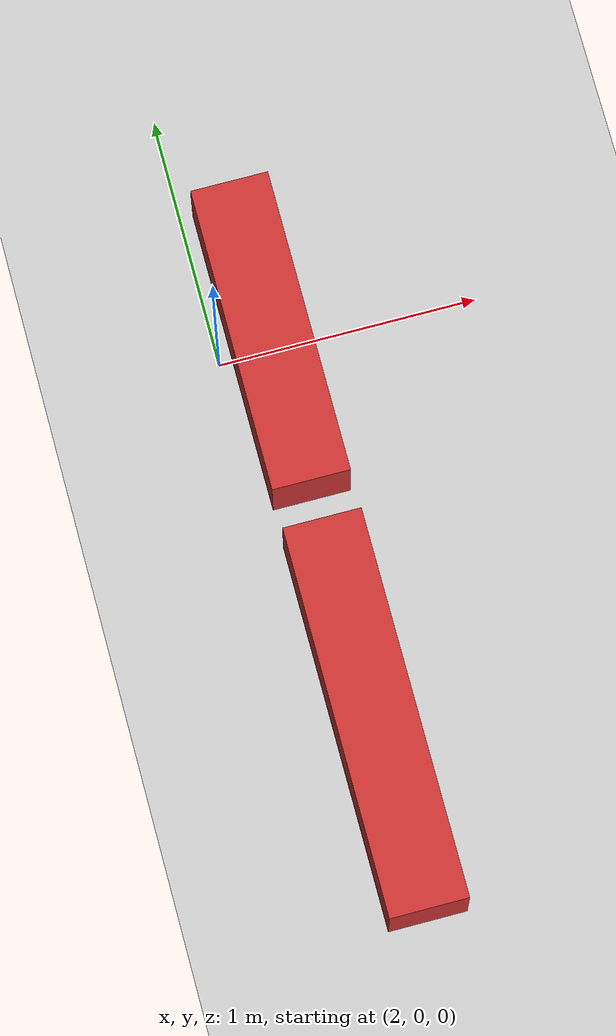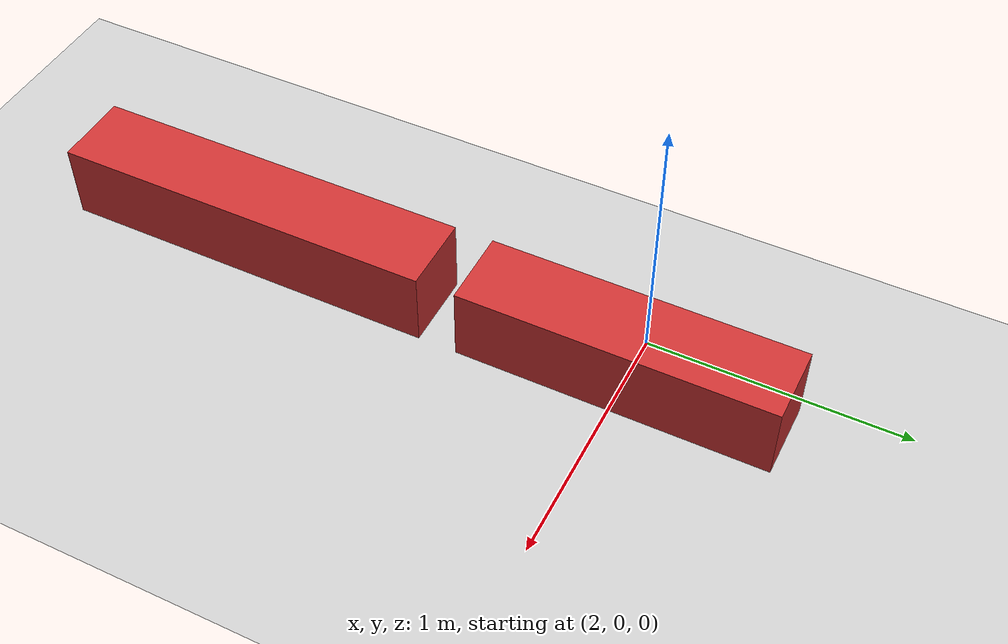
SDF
<?xml version="1.0" ?>
<!-- Same as the stock ros_gz_sim empty.sdf, plus the Sensors system plugin
     so that camera/lidar sensors on spawned models actually render and publish. -->
<sdf version="1.6">
  <world name="empty">
    <physics name="1ms" type="ignored">
      <max_step_size>0.001</max_step_size>
      <real_time_factor>1.0</real_time_factor>
    </physics>
    <plugin
      filename="ignition-gazebo-physics-system"
      name="gz::sim::systems::Physics">
    </plugin>
    <plugin
      filename="ignition-gazebo-user-commands-system"
      name="gz::sim::systems::UserCommands">
    </plugin>
    <plugin
      filename="ignition-gazebo-scene-broadcaster-system"
      name="gz::sim::systems::SceneBroadcaster">
    </plugin>
    <plugin
      filename="ignition-gazebo-contact-system"
      name="gz::sim::systems::Contact">
    </plugin>
    <plugin
      filename="ignition-gazebo-sensors-system"
      name="gz::sim::systems::Sensors">
      <render_engine>ogre2</render_engine>
    </plugin>

    <light type="directional" name="sun">
      <cast_shadows>true</cast_shadows>
      <pose>0 0 10 0 0 0</pose>
      <diffuse>0.8 0.8 0.8 1</diffuse>
      <specular>0.2 0.2 0.2 1</specular>
      <attenuation>
        <range>1000</range>
        <constant>0.9</constant>
        <linear>0.01</linear>
        <quadratic>0.001</quadratic>
      </attenuation>
      <direction>-0.5 0.1 -0.9</direction>
    </light>

    <model name="ground_plane">
      <static>true</static>
      <link name="link">
        <collision name="collision">
          <geometry>
            <plane>
              <normal>0 0 1</normal>
              <size>100 100</size>
            </plane>
          </geometry>
        </collision>
        <visual name="visual">
          <geometry>
            <plane>
              <normal>0 0 1</normal>
              <size>100 100</size>
            </plane>
          </geometry>
          <material>
            <ambient>0.8 0.8 0.8 1</ambient>
            <diffuse>0.8 0.8 0.8 1</diffuse>
            <specular>0.8 0.8 0.8 1</specular>
          </material>
        </visual>
      </link>
    </model>

    <model name="obstacle_front">
      <static>true</static>
      <pose>2.2 0 0.15 0 0 0</pose>
      <link name="link">
        <collision name="collision">
          <geometry>
            <box><size>0.3 1.2 0.3</size></box>
          </geometry>
        </collision>
        <visual name="visual">
          <geometry>
            <box><size>0.3 1.2 0.3</size></box>
          </geometry>
          <material>
            <ambient>0.8 0.2 0.2 1</ambient>
            <diffuse>0.8 0.2 0.2 1</diffuse>
          </material>
        </visual>
      </link>
    </model>

    <model name="obstacle_right">
      <static>true</static>
      <pose>2.2 -1.5 0.15 0 0 0</pose>
      <link name="link">
        <collision name="collision">
          <geometry>
            <box><size>0.3 1.5 0.3</size></box>
          </geometry>
        </collision>
        <visual name="visual">
          <geometry>
            <box><size>0.3 1.5 0.3</size></box>
          </geometry>
          <material>
            <ambient>0.8 0.2 0.2 1</ambient>
            <diffuse>0.8 0.2 0.2 1</diffuse>
          </material>
        </visual>
      </link>
    </model>

  </world>
</sdf>
